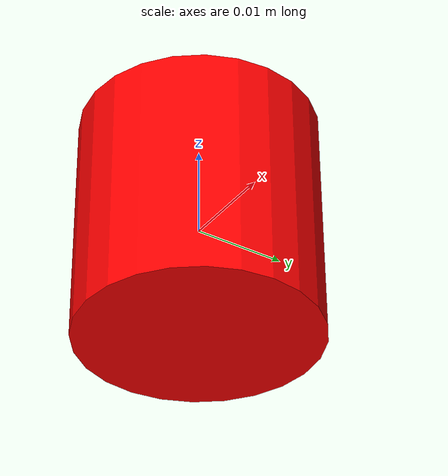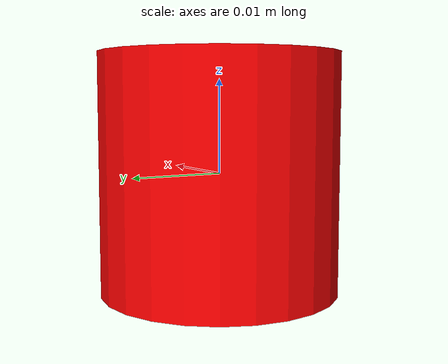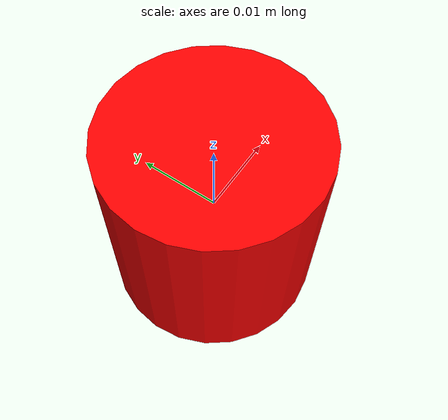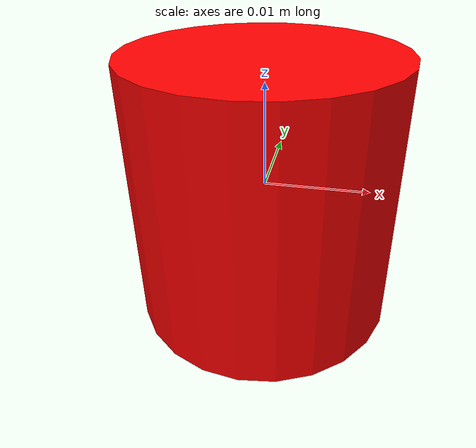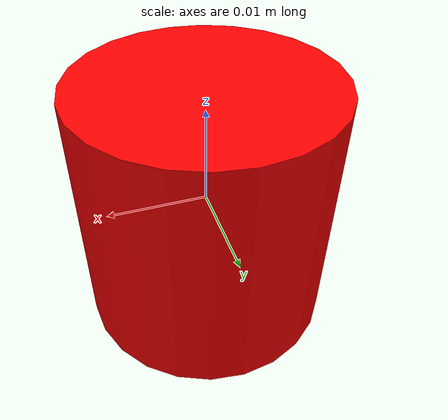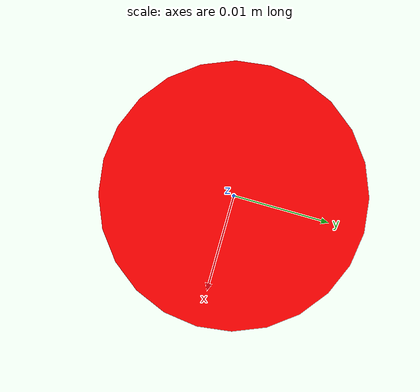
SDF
<sdf version="1.6">
  <model name="block_cylinder">
    <static>false</static>

    <link name="link">

      <!-- ===== Visual ===== -->
      <visual name="visual">
        <geometry>
          <!-- 直径 = 方块边长 = 0.0254 m，高度同样 0.0254 m -->
          <cylinder>
            <radius>0.0127</radius>
            <length>0.0254</length>     <!-- 高度 -->
          </cylinder>
        </geometry>
        <material>
          <ambient>1 0 0 1</ambient>
          <diffuse>1 0 0 1</diffuse>
        </material>
      </visual>

      <!-- ===== Collision ===== -->
      <collision name="collision">
        <geometry>
          <cylinder>
            <radius>0.0127</radius>
            <length>0.0254</length>
          </cylinder>
        </geometry>

        <!-- 摩擦、接触参数保持不变 -->
        <surface>
          <friction>
            <ode>
              <mu>50.0</mu>
              <mu2>50.0</mu2>
              <slip1>0.01</slip1>
              <slip2>0.01</slip2>
            </ode>
          </friction>
          <contact>
            <ode>
              <kp>1e9</kp>
              <kd>10</kd>
            </ode>
          </contact>
        </surface>
      </collision>

      <!-- ===== Inertial ===== -->
      <!-- 质量沿用 0.001 kg，惯量按实心圆柱近似 Ixx = Iyy = 1/12*m*(3r²+h²),  Izz = 1/2*m*r² -->
      <inertial>
        <mass>0.001</mass>
        <inertia>
          <ixx>6.78e-06</ixx>
          <ixy>0</ixy>
          <ixz>0</ixz>
          <iyy>6.78e-06</iyy>
          <iyz>0</iyz>
          <izz>8.06e-07</izz>
        </inertia>
      </inertial>

    </link>
  </model>
</sdf>
